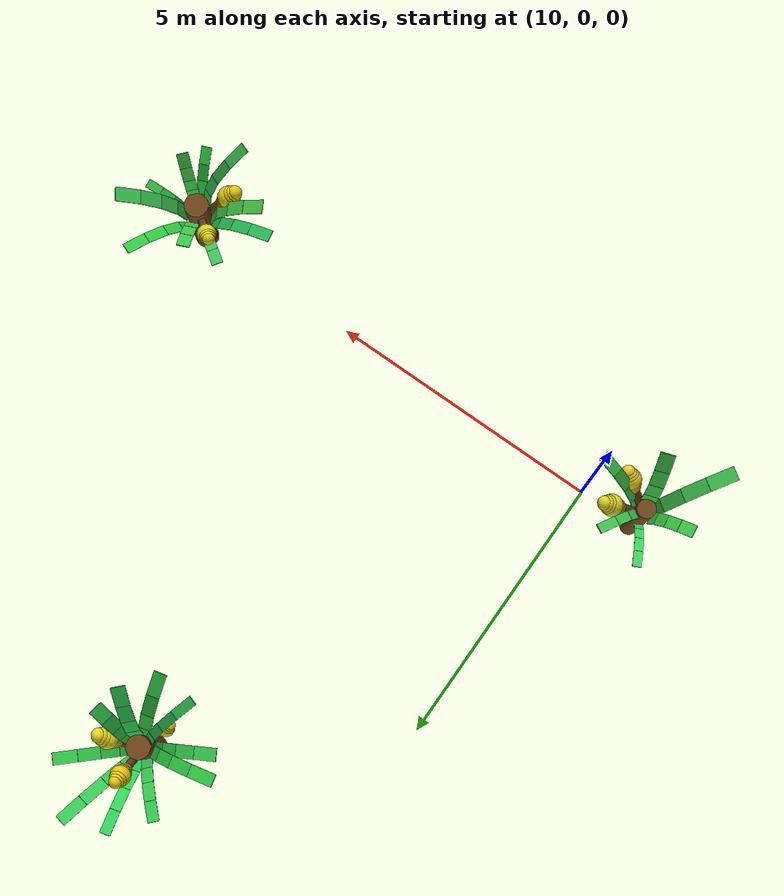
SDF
<sdf version="1.10">
 <world name="tree_world">
  <model name="tree_0_1">
   <pose>9.00 0.00 0 0 0 0</pose>
   <static>true</static>
   <link name="trunk">
    <pose>0 0 1.255 0 0 0</pose>
    <visual name="trunk_vis">
     <geometry><cylinder><radius>0.159</radius><length>2.510</length></cylinder></geometry>
     <material><diffuse>0.45 0.27 0.1 1</diffuse><ambient>0.45 0.27 0.1 1</ambient></material>
    </visual>
   </link>
   <link name="frond_0_1_0">
    <pose>0.153 -0.027 2.008 0 0.252802 -0.178033</pose>
    <visual name="frond_seg_0_1_0_0">
     <pose>0.000 0 0.200 0 0.000000 0</pose>
     <geometry><box><size>0.020 0.188 0.399</size></box></geometry>
     <material><diffuse>0.21 0.80 0.28 1</diffuse><ambient>0.21 0.80 0.28 1</ambient></material>
    </visual>
    <visual name="frond_seg_0_1_0_1">
     <pose>0.052 0 0.592 0 0.261799 0</pose>
     <geometry><box><size>0.020 0.188 0.399</size></box></geometry>
     <material><diffuse>0.21 0.80 0.28 1</diffuse><ambient>0.21 0.80 0.28 1</ambient></material>
    </visual>
    <visual name="frond_seg_0_1_0_2">
     <pose>0.203 0 0.957 0 0.523599 0</pose>
     <geometry><box><size>0.020 0.188 0.399</size></box></geometry>
     <material><diffuse>0.21 0.80 0.28 1</diffuse><ambient>0.21 0.80 0.28 1</ambient></material>
    </visual>
    <visual name="frond_seg_0_1_0_3">
     <pose>0.444 0 1.271 0 0.785398 0</pose>
     <geometry><box><size>0.020 0.188 0.399</size></box></geometry>
     <material><diffuse>0.21 0.80 0.28 1</diffuse><ambient>0.21 0.80 0.28 1</ambient></material>
    </visual>
   </link>
   <link name="frond_0_1_1">
    <pose>0.074 0.136 2.294 0 0.160221 1.075067</pose>
    <visual name="frond_seg_0_1_1_0">
     <pose>0.000 0 0.210 0 0.000000 0</pose>
     <geometry><box><size>0.020 0.161 0.420</size></box></geometry>
     <material><diffuse>0.24 0.83 0.33 1</diffuse><ambient>0.24 0.83 0.33 1</ambient></material>
    </visual>
    <visual name="frond_seg_0_1_1_1">
     <pose>0.054 0 0.623 0 0.261799 0</pose>
     <geometry><box><size>0.020 0.161 0.420</size></box></geometry>
     <material><diffuse>0.24 0.83 0.33 1</diffuse><ambient>0.24 0.83 0.33 1</ambient></material>
    </visual>
    <visual name="frond_seg_0_1_1_2">
     <pose>0.214 0 1.008 0 0.523599 0</pose>
     <geometry><box><size>0.020 0.161 0.420</size></box></geometry>
     <material><diffuse>0.24 0.83 0.33 1</diffuse><ambient>0.24 0.83 0.33 1</ambient></material>
    </visual>
    <visual name="frond_seg_0_1_1_3">
     <pose>0.467 0 1.338 0 0.785398 0</pose>
     <geometry><box><size>0.020 0.161 0.420</size></box></geometry>
     <material><diffuse>0.24 0.83 0.33 1</diffuse><ambient>0.24 0.83 0.33 1</ambient></material>
    </visual>
   </link>
   <link name="frond_0_1_2">
    <pose>-0.066 0.140 1.576 0 0.389572 2.010711</pose>
    <visual name="frond_seg_0_1_2_0">
     <pose>0.000 0 0.145 0 0.000000 0</pose>
     <geometry><box><size>0.020 0.150 0.290</size></box></geometry>
     <material><diffuse>0.22 0.82 0.35 1</diffuse><ambient>0.22 0.82 0.35 1</ambient></material>
    </visual>
    <visual name="frond_seg_0_1_2_1">
     <pose>0.037 0 0.429 0 0.261799 0</pose>
     <geometry><box><size>0.020 0.150 0.290</size></box></geometry>
     <material><diffuse>0.22 0.82 0.35 1</diffuse><ambient>0.22 0.82 0.35 1</ambient></material>
    </visual>
    <visual name="frond_seg_0_1_2_2">
     <pose>0.147 0 0.695 0 0.523599 0</pose>
     <geometry><box><size>0.020 0.150 0.290</size></box></geometry>
     <material><diffuse>0.22 0.82 0.35 1</diffuse><ambient>0.22 0.82 0.35 1</ambient></material>
    </visual>
    <visual name="frond_seg_0_1_2_3">
     <pose>0.322 0 0.922 0 0.785398 0</pose>
     <geometry><box><size>0.020 0.150 0.290</size></box></geometry>
     <material><diffuse>0.22 0.82 0.35 1</diffuse><ambient>0.22 0.82 0.35 1</ambient></material>
    </visual>
   </link>
   <link name="frond_0_1_3">
    <pose>-0.154 -0.021 1.816 0 0.313874 3.278756</pose>
    <visual name="frond_seg_0_1_3_0">
     <pose>0.000 0 0.138 0 0.000000 0</pose>
     <geometry><box><size>0.020 0.213 0.277</size></box></geometry>
     <material><diffuse>0.23 0.80 0.27 1</diffuse><ambient>0.23 0.80 0.27 1</ambient></material>
    </visual>
    <visual name="frond_seg_0_1_3_1">
     <pose>0.036 0 0.410 0 0.261799 0</pose>
     <geometry><box><size>0.020 0.213 0.277</size></box></geometry>
     <material><diffuse>0.23 0.80 0.27 1</diffuse><ambient>0.23 0.80 0.27 1</ambient></material>
    </visual>
    <visual name="frond_seg_0_1_3_2">
     <pose>0.141 0 0.664 0 0.523599 0</pose>
     <geometry><box><size>0.020 0.213 0.277</size></box></geometry>
     <material><diffuse>0.23 0.80 0.27 1</diffuse><ambient>0.23 0.80 0.27 1</ambient></material>
    </visual>
    <visual name="frond_seg_0_1_3_3">
     <pose>0.308 0 0.881 0 0.785398 0</pose>
     <geometry><box><size>0.020 0.213 0.277</size></box></geometry>
     <material><diffuse>0.23 0.80 0.27 1</diffuse><ambient>0.23 0.80 0.27 1</ambient></material>
    </visual>
   </link>
   <link name="frond_0_1_4">
    <pose>-0.086 -0.129 1.429 0 0.436207 4.122772</pose>
    <visual name="frond_seg_0_1_4_0">
     <pose>0.000 0 0.244 0 0.000000 0</pose>
     <geometry><box><size>0.020 0.242 0.488</size></box></geometry>
     <material><diffuse>0.24 0.81 0.30 1</diffuse><ambient>0.24 0.81 0.30 1</ambient></material>
    </visual>
    <visual name="frond_seg_0_1_4_1">
     <pose>0.063 0 0.724 0 0.261799 0</pose>
     <geometry><box><size>0.020 0.242 0.488</size></box></geometry>
     <material><diffuse>0.24 0.81 0.30 1</diffuse><ambient>0.24 0.81 0.30 1</ambient></material>
    </visual>
    <visual name="frond_seg_0_1_4_2">
     <pose>0.248 0 1.172 0 0.523599 0</pose>
     <geometry><box><size>0.020 0.242 0.488</size></box></geometry>
     <material><diffuse>0.24 0.81 0.30 1</diffuse><ambient>0.24 0.81 0.30 1</ambient></material>
    </visual>
    <visual name="frond_seg_0_1_4_3">
     <pose>0.543 0 1.556 0 0.785398 0</pose>
     <geometry><box><size>0.020 0.242 0.488</size></box></geometry>
     <material><diffuse>0.24 0.81 0.30 1</diffuse><ambient>0.24 0.81 0.30 1</ambient></material>
    </visual>
   </link>
   <link name="frond_0_1_5">
    <pose>0.049 -0.147 2.420 0 0.100604 5.032762</pose>
    <visual name="frond_seg_0_1_5_0">
     <pose>0.000 0 0.170 0 0.000000 0</pose>
     <geometry><box><size>0.020 0.249 0.341</size></box></geometry>
     <material><diffuse>0.23 0.77 0.27 1</diffuse><ambient>0.23 0.77 0.27 1</ambient></material>
    </visual>
    <visual name="frond_seg_0_1_5_1">
     <pose>0.044 0 0.505 0 0.261799 0</pose>
     <geometry><box><size>0.020 0.249 0.341</size></box></geometry>
     <material><diffuse>0.23 0.77 0.27 1</diffuse><ambient>0.23 0.77 0.27 1</ambient></material>
    </visual>
    <visual name="frond_seg_0_1_5_2">
     <pose>0.173 0 0.817 0 0.523599 0</pose>
     <geometry><box><size>0.020 0.249 0.341</size></box></geometry>
     <material><diffuse>0.23 0.77 0.27 1</diffuse><ambient>0.23 0.77 0.27 1</ambient></material>
    </visual>
    <visual name="frond_seg_0_1_5_3">
     <pose>0.379 0 1.085 0 0.785398 0</pose>
     <geometry><box><size>0.020 0.249 0.341</size></box></geometry>
     <material><diffuse>0.23 0.77 0.27 1</diffuse><ambient>0.23 0.77 0.27 1</ambient></material>
    </visual>
   </link>
   <link name="fruit_bunch_0_1_0">
    <pose>0.119 0.064 2.020 0 0.738607 0.494845</pose>
    <visual name="stalk_0_1_0">
     <pose>0 0 0.248 0 0 0</pose>
     <geometry><cylinder><radius>0.074</radius><length>0.497</length></cylinder></geometry>
     <material><diffuse>0.37 0.25 0.11 1</diffuse><ambient>0.37 0.25 0.11 1</ambient></material>
    </visual>
    <visual name="fruit_0_1_0_seg0">
     <pose>0 0 0.450 0 0 0</pose>
     <geometry><sphere><radius>0.121</radius></sphere></geometry>
     <material><diffuse>0.86 0.82 0.14 1</diffuse><ambient>0.86 0.82 0.14 1</ambient></material>
    </visual>
    <visual name="fruit_0_1_0_seg1">
     <pose>0 0 0.513 0 0 0</pose>
     <geometry><sphere><radius>0.143</radius></sphere></geometry>
     <material><diffuse>0.86 0.82 0.14 1</diffuse><ambient>0.86 0.82 0.14 1</ambient></material>
    </visual>
    <visual name="fruit_0_1_0_seg2">
     <pose>0 0 0.575 0 0 0</pose>
     <geometry><sphere><radius>0.164</radius></sphere></geometry>
     <material><diffuse>0.86 0.82 0.14 1</diffuse><ambient>0.86 0.82 0.14 1</ambient></material>
    </visual>
    <visual name="fruit_0_1_0_seg3">
     <pose>0 0 0.638 0 0 0</pose>
     <geometry><sphere><radius>0.186</radius></sphere></geometry>
     <material><diffuse>0.86 0.82 0.14 1</diffuse><ambient>0.86 0.82 0.14 1</ambient></material>
    </visual>
    <visual name="fruit_0_1_0_seg4">
     <pose>0 0 0.700 0 0 0</pose>
     <geometry><sphere><radius>0.164</radius></sphere></geometry>
     <material><diffuse>0.86 0.82 0.14 1</diffuse><ambient>0.86 0.82 0.14 1</ambient></material>
    </visual>
    <visual name="fruit_0_1_0_seg5">
     <pose>0 0 0.763 0 0 0</pose>
     <geometry><sphere><radius>0.143</radius></sphere></geometry>
     <material><diffuse>0.86 0.82 0.14 1</diffuse><ambient>0.86 0.82 0.14 1</ambient></material>
    </visual>
    <visual name="fruit_0_1_0_seg6">
     <pose>0 0 0.826 0 0 0</pose>
     <geometry><sphere><radius>0.121</radius></sphere></geometry>
     <material><diffuse>0.86 0.82 0.14 1</diffuse><ambient>0.86 0.82 0.14 1</ambient></material>
    </visual>
   </link>
   <link name="fruit_bunch_0_1_1">
    <pose>0.122 -0.059 2.219 0 0.742684 5.836536</pose>
    <visual name="stalk_0_1_1">
     <pose>0 0 0.228 0 0 0</pose>
     <geometry><cylinder><radius>0.071</radius><length>0.457</length></cylinder></geometry>
     <material><diffuse>0.40 0.22 0.06 1</diffuse><ambient>0.40 0.22 0.06 1</ambient></material>
    </visual>
    <visual name="fruit_0_1_1_seg0">
     <pose>0 0 0.413 0 0 0</pose>
     <geometry><sphere><radius>0.115</radius></sphere></geometry>
     <material><diffuse>0.92 0.79 0.14 1</diffuse><ambient>0.92 0.79 0.14 1</ambient></material>
    </visual>
    <visual name="fruit_0_1_1_seg1">
     <pose>0 0 0.470 0 0 0</pose>
     <geometry><sphere><radius>0.136</radius></sphere></geometry>
     <material><diffuse>0.92 0.79 0.14 1</diffuse><ambient>0.92 0.79 0.14 1</ambient></material>
    </visual>
    <visual name="fruit_0_1_1_seg2">
     <pose>0 0 0.528 0 0 0</pose>
     <geometry><sphere><radius>0.156</radius></sphere></geometry>
     <material><diffuse>0.92 0.79 0.14 1</diffuse><ambient>0.92 0.79 0.14 1</ambient></material>
    </visual>
    <visual name="fruit_0_1_1_seg3">
     <pose>0 0 0.585 0 0 0</pose>
     <geometry><sphere><radius>0.177</radius></sphere></geometry>
     <material><diffuse>0.92 0.79 0.14 1</diffuse><ambient>0.92 0.79 0.14 1</ambient></material>
    </visual>
    <visual name="fruit_0_1_1_seg4">
     <pose>0 0 0.642 0 0 0</pose>
     <geometry><sphere><radius>0.156</radius></sphere></geometry>
     <material><diffuse>0.92 0.79 0.14 1</diffuse><ambient>0.92 0.79 0.14 1</ambient></material>
    </visual>
    <visual name="fruit_0_1_1_seg5">
     <pose>0 0 0.700 0 0 0</pose>
     <geometry><sphere><radius>0.136</radius></sphere></geometry>
     <material><diffuse>0.92 0.79 0.14 1</diffuse><ambient>0.92 0.79 0.14 1</ambient></material>
    </visual>
    <visual name="fruit_0_1_1_seg6">
     <pose>0 0 0.757 0 0 0</pose>
     <geometry><sphere><radius>0.115</radius></sphere></geometry>
     <material><diffuse>0.92 0.79 0.14 1</diffuse><ambient>0.92 0.79 0.14 1</ambient></material>
    </visual>
   </link>
  </model>
  <model name="tree_0_2">
   <pose>18.00 0.00 0 0 0 0</pose>
   <static>true</static>
   <link name="trunk">
    <pose>0 0 1.011 0 0 0</pose>
    <visual name="trunk_vis">
     <geometry><cylinder><radius>0.205</radius><length>2.021</length></cylinder></geometry>
     <material><diffuse>0.45 0.27 0.1 1</diffuse><ambient>0.45 0.27 0.1 1</ambient></material>
    </visual>
   </link>
   <link name="frond_0_2_0">
    <pose>0.200 0.022 1.056 0 0.459785 0.108825</pose>
    <visual name="frond_seg_0_2_0_0">
     <pose>0.000 0 0.133 0 0.000000 0</pose>
     <geometry><box><size>0.020 0.153 0.267</size></box></geometry>
     <material><diffuse>0.18 0.80 0.28 1</diffuse><ambient>0.18 0.80 0.28 1</ambient></material>
    </visual>
    <visual name="frond_seg_0_2_0_1">
     <pose>0.035 0 0.396 0 0.261799 0</pose>
     <geometry><box><size>0.020 0.153 0.267</size></box></geometry>
     <material><diffuse>0.18 0.80 0.28 1</diffuse><ambient>0.18 0.80 0.28 1</ambient></material>
    </visual>
    <visual name="frond_seg_0_2_0_2">
     <pose>0.136 0 0.640 0 0.523599 0</pose>
     <geometry><box><size>0.020 0.153 0.267</size></box></geometry>
     <material><diffuse>0.18 0.80 0.28 1</diffuse><ambient>0.18 0.80 0.28 1</ambient></material>
    </visual>
    <visual name="frond_seg_0_2_0_3">
     <pose>0.297 0 0.850 0 0.785398 0</pose>
     <geometry><box><size>0.020 0.153 0.267</size></box></geometry>
     <material><diffuse>0.18 0.80 0.28 1</diffuse><ambient>0.18 0.80 0.28 1</ambient></material>
    </visual>
   </link>
   <link name="frond_0_2_1">
    <pose>0.164 0.117 1.488 0 0.290012 0.620682</pose>
    <visual name="frond_seg_0_2_1_0">
     <pose>0.000 0 0.215 0 0.000000 0</pose>
     <geometry><box><size>0.020 0.238 0.431</size></box></geometry>
     <material><diffuse>0.21 0.77 0.30 1</diffuse><ambient>0.21 0.77 0.30 1</ambient></material>
    </visual>
    <visual name="frond_seg_0_2_1_1">
     <pose>0.056 0 0.639 0 0.261799 0</pose>
     <geometry><box><size>0.020 0.238 0.431</size></box></geometry>
     <material><diffuse>0.21 0.77 0.30 1</diffuse><ambient>0.21 0.77 0.30 1</ambient></material>
    </visual>
    <visual name="frond_seg_0_2_1_2">
     <pose>0.219 0 1.034 0 0.523599 0</pose>
     <geometry><box><size>0.020 0.238 0.431</size></box></geometry>
     <material><diffuse>0.21 0.77 0.30 1</diffuse><ambient>0.21 0.77 0.30 1</ambient></material>
    </visual>
    <visual name="frond_seg_0_2_1_3">
     <pose>0.479 0 1.372 0 0.785398 0</pose>
     <geometry><box><size>0.020 0.238 0.431</size></box></geometry>
     <material><diffuse>0.21 0.77 0.30 1</diffuse><ambient>0.21 0.77 0.30 1</ambient></material>
    </visual>
   </link>
   <link name="frond_0_2_2">
    <pose>0.071 0.188 1.088 0 0.447256 1.207974</pose>
    <visual name="frond_seg_0_2_2_0">
     <pose>0.000 0 0.207 0 0.000000 0</pose>
     <geometry><box><size>0.020 0.185 0.415</size></box></geometry>
     <material><diffuse>0.19 0.84 0.26 1</diffuse><ambient>0.19 0.84 0.26 1</ambient></material>
    </visual>
    <visual name="frond_seg_0_2_2_1">
     <pose>0.054 0 0.615 0 0.261799 0</pose>
     <geometry><box><size>0.020 0.185 0.415</size></box></geometry>
     <material><diffuse>0.19 0.84 0.26 1</diffuse><ambient>0.19 0.84 0.26 1</ambient></material>
    </visual>
    <visual name="frond_seg_0_2_2_2">
     <pose>0.211 0 0.995 0 0.523599 0</pose>
     <geometry><box><size>0.020 0.185 0.415</size></box></geometry>
     <material><diffuse>0.19 0.84 0.26 1</diffuse><ambient>0.19 0.84 0.26 1</ambient></material>
    </visual>
    <visual name="frond_seg_0_2_2_3">
     <pose>0.461 0 1.321 0 0.785398 0</pose>
     <geometry><box><size>0.020 0.185 0.415</size></box></geometry>
     <material><diffuse>0.19 0.84 0.26 1</diffuse><ambient>0.19 0.84 0.26 1</ambient></material>
    </visual>
   </link>
   <link name="frond_0_2_3">
    <pose>-0.077 0.186 1.583 0 0.252214 1.965305</pose>
    <visual name="frond_seg_0_2_3_0">
     <pose>0.000 0 0.133 0 0.000000 0</pose>
     <geometry><box><size>0.020 0.223 0.265</size></box></geometry>
     <material><diffuse>0.23 0.76 0.27 1</diffuse><ambient>0.23 0.76 0.27 1</ambient></material>
    </visual>
    <visual name="frond_seg_0_2_3_1">
     <pose>0.034 0 0.393 0 0.261799 0</pose>
     <geometry><box><size>0.020 0.223 0.265</size></box></geometry>
     <material><diffuse>0.23 0.76 0.27 1</diffuse><ambient>0.23 0.76 0.27 1</ambient></material>
    </visual>
    <visual name="frond_seg_0_2_3_2">
     <pose>0.135 0 0.636 0 0.523599 0</pose>
     <geometry><box><size>0.020 0.223 0.265</size></box></geometry>
     <material><diffuse>0.23 0.76 0.27 1</diffuse><ambient>0.23 0.76 0.27 1</ambient></material>
    </visual>
    <visual name="frond_seg_0_2_3_3">
     <pose>0.295 0 0.845 0 0.785398 0</pose>
     <geometry><box><size>0.020 0.223 0.265</size></box></geometry>
     <material><diffuse>0.23 0.76 0.27 1</diffuse><ambient>0.23 0.76 0.27 1</ambient></material>
    </visual>
   </link>
   <link name="frond_0_2_4">
    <pose>-0.165 0.115 1.129 0 0.431049 2.532273</pose>
    <visual name="frond_seg_0_2_4_0">
     <pose>0.000 0 0.148 0 0.000000 0</pose>
     <geometry><box><size>0.020 0.196 0.296</size></box></geometry>
     <material><diffuse>0.24 0.76 0.33 1</diffuse><ambient>0.24 0.76 0.33 1</ambient></material>
    </visual>
    <visual name="frond_seg_0_2_4_1">
     <pose>0.038 0 0.439 0 0.261799 0</pose>
     <geometry><box><size>0.020 0.196 0.296</size></box></geometry>
     <material><diffuse>0.24 0.76 0.33 1</diffuse><ambient>0.24 0.76 0.33 1</ambient></material>
    </visual>
    <visual name="frond_seg_0_2_4_2">
     <pose>0.151 0 0.710 0 0.523599 0</pose>
     <geometry><box><size>0.020 0.196 0.296</size></box></geometry>
     <material><diffuse>0.24 0.76 0.33 1</diffuse><ambient>0.24 0.76 0.33 1</ambient></material>
    </visual>
    <visual name="frond_seg_0_2_4_3">
     <pose>0.329 0 0.943 0 0.785398 0</pose>
     <geometry><box><size>0.020 0.196 0.296</size></box></geometry>
     <material><diffuse>0.24 0.76 0.33 1</diffuse><ambient>0.24 0.76 0.33 1</ambient></material>
    </visual>
   </link>
   <link name="frond_0_2_5">
    <pose>-0.198 -0.037 1.091 0 0.445989 3.327976</pose>
    <visual name="frond_seg_0_2_5_0">
     <pose>0.000 0 0.207 0 0.000000 0</pose>
     <geometry><box><size>0.020 0.204 0.413</size></box></geometry>
     <material><diffuse>0.15 0.76 0.33 1</diffuse><ambient>0.15 0.76 0.33 1</ambient></material>
    </visual>
    <visual name="frond_seg_0_2_5_1">
     <pose>0.053 0 0.613 0 0.261799 0</pose>
     <geometry><box><size>0.020 0.204 0.413</size></box></geometry>
     <material><diffuse>0.15 0.76 0.33 1</diffuse><ambient>0.15 0.76 0.33 1</ambient></material>
    </visual>
    <visual name="frond_seg_0_2_5_2">
     <pose>0.210 0 0.991 0 0.523599 0</pose>
     <geometry><box><size>0.020 0.204 0.413</size></box></geometry>
     <material><diffuse>0.15 0.76 0.33 1</diffuse><ambient>0.15 0.76 0.33 1</ambient></material>
    </visual>
    <visual name="frond_seg_0_2_5_3">
     <pose>0.459 0 1.316 0 0.785398 0</pose>
     <geometry><box><size>0.020 0.204 0.413</size></box></geometry>
     <material><diffuse>0.15 0.76 0.33 1</diffuse><ambient>0.15 0.76 0.33 1</ambient></material>
    </visual>
   </link>
   <link name="frond_0_2_6">
    <pose>-0.178 -0.095 1.369 0 0.336954 3.631880</pose>
    <visual name="frond_seg_0_2_6_0">
     <pose>0.000 0 0.185 0 0.000000 0</pose>
     <geometry><box><size>0.020 0.236 0.370</size></box></geometry>
     <material><diffuse>0.24 0.77 0.25 1</diffuse><ambient>0.24 0.77 0.25 1</ambient></material>
    </visual>
    <visual name="frond_seg_0_2_6_1">
     <pose>0.048 0 0.549 0 0.261799 0</pose>
     <geometry><box><size>0.020 0.236 0.370</size></box></geometry>
     <material><diffuse>0.24 0.77 0.25 1</diffuse><ambient>0.24 0.77 0.25 1</ambient></material>
    </visual>
    <visual name="frond_seg_0_2_6_2">
     <pose>0.188 0 0.888 0 0.523599 0</pose>
     <geometry><box><size>0.020 0.236 0.370</size></box></geometry>
     <material><diffuse>0.24 0.77 0.25 1</diffuse><ambient>0.24 0.77 0.25 1</ambient></material>
    </visual>
    <visual name="frond_seg_0_2_6_3">
     <pose>0.412 0 1.180 0 0.785398 0</pose>
     <geometry><box><size>0.020 0.236 0.370</size></box></geometry>
     <material><diffuse>0.24 0.77 0.25 1</diffuse><ambient>0.24 0.77 0.25 1</ambient></material>
    </visual>
   </link>
   <link name="frond_0_2_7">
    <pose>-0.073 -0.188 1.827 0 0.153135 4.340855</pose>
    <visual name="frond_seg_0_2_7_0">
     <pose>0.000 0 0.223 0 0.000000 0</pose>
     <geometry><box><size>0.020 0.179 0.446</size></box></geometry>
     <material><diffuse>0.22 0.82 0.33 1</diffuse><ambient>0.22 0.82 0.33 1</ambient></material>
    </visual>
    <visual name="frond_seg_0_2_7_1">
     <pose>0.058 0 0.662 0 0.261799 0</pose>
     <geometry><box><size>0.020 0.179 0.446</size></box></geometry>
     <material><diffuse>0.22 0.82 0.33 1</diffuse><ambient>0.22 0.82 0.33 1</ambient></material>
    </visual>
    <visual name="frond_seg_0_2_7_2">
     <pose>0.227 0 1.071 0 0.523599 0</pose>
     <geometry><box><size>0.020 0.179 0.446</size></box></geometry>
     <material><diffuse>0.22 0.82 0.33 1</diffuse><ambient>0.22 0.82 0.33 1</ambient></material>
    </visual>
    <visual name="frond_seg_0_2_7_3">
     <pose>0.496 0 1.422 0 0.785398 0</pose>
     <geometry><box><size>0.020 0.179 0.446</size></box></geometry>
     <material><diffuse>0.22 0.82 0.33 1</diffuse><ambient>0.22 0.82 0.33 1</ambient></material>
    </visual>
   </link>
   <link name="frond_0_2_8">
    <pose>0.078 -0.186 1.441 0 0.308589 5.111304</pose>
    <visual name="frond_seg_0_2_8_0">
     <pose>0.000 0 0.149 0 0.000000 0</pose>
     <geometry><box><size>0.020 0.172 0.297</size></box></geometry>
     <material><diffuse>0.16 0.82 0.26 1</diffuse><ambient>0.16 0.82 0.26 1</ambient></material>
    </visual>
    <visual name="frond_seg_0_2_8_1">
     <pose>0.038 0 0.441 0 0.261799 0</pose>
     <geometry><box><size>0.020 0.172 0.297</size></box></geometry>
     <material><diffuse>0.16 0.82 0.26 1</diffuse><ambient>0.16 0.82 0.26 1</ambient></material>
    </visual>
    <visual name="frond_seg_0_2_8_2">
     <pose>0.151 0 0.714 0 0.523599 0</pose>
     <geometry><box><size>0.020 0.172 0.297</size></box></geometry>
     <material><diffuse>0.16 0.82 0.26 1</diffuse><ambient>0.16 0.82 0.26 1</ambient></material>
    </visual>
    <visual name="frond_seg_0_2_8_3">
     <pose>0.331 0 0.948 0 0.785398 0</pose>
     <geometry><box><size>0.020 0.172 0.297</size></box></geometry>
     <material><diffuse>0.16 0.82 0.26 1</diffuse><ambient>0.16 0.82 0.26 1</ambient></material>
    </visual>
   </link>
   <link name="frond_0_2_9">
    <pose>0.151 -0.134 1.935 0 0.087894 5.557270</pose>
    <visual name="frond_seg_0_2_9_0">
     <pose>0.000 0 0.131 0 0.000000 0</pose>
     <geometry><box><size>0.020 0.198 0.263</size></box></geometry>
     <material><diffuse>0.24 0.80 0.26 1</diffuse><ambient>0.24 0.80 0.26 1</ambient></material>
    </visual>
    <visual name="frond_seg_0_2_9_1">
     <pose>0.034 0 0.389 0 0.261799 0</pose>
     <geometry><box><size>0.020 0.198 0.263</size></box></geometry>
     <material><diffuse>0.24 0.80 0.26 1</diffuse><ambient>0.24 0.80 0.26 1</ambient></material>
    </visual>
    <visual name="frond_seg_0_2_9_2">
     <pose>0.134 0 0.630 0 0.523599 0</pose>
     <geometry><box><size>0.020 0.198 0.263</size></box></geometry>
     <material><diffuse>0.24 0.80 0.26 1</diffuse><ambient>0.24 0.80 0.26 1</ambient></material>
    </visual>
    <visual name="frond_seg_0_2_9_3">
     <pose>0.292 0 0.836 0 0.785398 0</pose>
     <geometry><box><size>0.020 0.198 0.263</size></box></geometry>
     <material><diffuse>0.24 0.80 0.26 1</diffuse><ambient>0.24 0.80 0.26 1</ambient></material>
    </visual>
   </link>
   <link name="fruit_bunch_0_2_0">
    <pose>-0.145 0.100 1.734 0 0.775205 2.536997</pose>
    <visual name="stalk_0_2_0">
     <pose>0 0 0.218 0 0 0</pose>
     <geometry><cylinder><radius>0.067</radius><length>0.437</length></cylinder></geometry>
     <material><diffuse>0.38 0.23 0.12 1</diffuse><ambient>0.38 0.23 0.12 1</ambient></material>
    </visual>
    <visual name="fruit_0_2_0_seg0">
     <pose>0 0 0.395 0 0 0</pose>
     <geometry><sphere><radius>0.109</radius></sphere></geometry>
     <material><diffuse>0.86 0.82 0.11 1</diffuse><ambient>0.86 0.82 0.11 1</ambient></material>
    </visual>
    <visual name="fruit_0_2_0_seg1">
     <pose>0 0 0.444 0 0 0</pose>
     <geometry><sphere><radius>0.129</radius></sphere></geometry>
     <material><diffuse>0.86 0.82 0.11 1</diffuse><ambient>0.86 0.82 0.11 1</ambient></material>
    </visual>
    <visual name="fruit_0_2_0_seg2">
     <pose>0 0 0.494 0 0 0</pose>
     <geometry><sphere><radius>0.148</radius></sphere></geometry>
     <material><diffuse>0.86 0.82 0.11 1</diffuse><ambient>0.86 0.82 0.11 1</ambient></material>
    </visual>
    <visual name="fruit_0_2_0_seg3">
     <pose>0 0 0.543 0 0 0</pose>
     <geometry><sphere><radius>0.168</radius></sphere></geometry>
     <material><diffuse>0.86 0.82 0.11 1</diffuse><ambient>0.86 0.82 0.11 1</ambient></material>
    </visual>
    <visual name="fruit_0_2_0_seg4">
     <pose>0 0 0.593 0 0 0</pose>
     <geometry><sphere><radius>0.148</radius></sphere></geometry>
     <material><diffuse>0.86 0.82 0.11 1</diffuse><ambient>0.86 0.82 0.11 1</ambient></material>
    </visual>
    <visual name="fruit_0_2_0_seg5">
     <pose>0 0 0.642 0 0 0</pose>
     <geometry><sphere><radius>0.129</radius></sphere></geometry>
     <material><diffuse>0.86 0.82 0.11 1</diffuse><ambient>0.86 0.82 0.11 1</ambient></material>
    </visual>
    <visual name="fruit_0_2_0_seg6">
     <pose>0 0 0.692 0 0 0</pose>
     <geometry><sphere><radius>0.109</radius></sphere></geometry>
     <material><diffuse>0.86 0.82 0.11 1</diffuse><ambient>0.86 0.82 0.11 1</ambient></material>
    </visual>
   </link>
   <link name="fruit_bunch_0_2_1">
    <pose>-0.106 -0.138 1.441 0 0.690666 4.055801</pose>
    <visual name="stalk_0_2_1">
     <pose>0 0 0.245 0 0 0</pose>
     <geometry><cylinder><radius>0.078</radius><length>0.490</length></cylinder></geometry>
     <material><diffuse>0.40 0.25 0.06 1</diffuse><ambient>0.40 0.25 0.06 1</ambient></material>
    </visual>
    <visual name="fruit_0_2_1_seg0">
     <pose>0 0 0.442 0 0 0</pose>
     <geometry><sphere><radius>0.127</radius></sphere></geometry>
     <material><diffuse>0.91 0.81 0.06 1</diffuse><ambient>0.91 0.81 0.06 1</ambient></material>
    </visual>
    <visual name="fruit_0_2_1_seg1">
     <pose>0 0 0.499 0 0 0</pose>
     <geometry><sphere><radius>0.149</radius></sphere></geometry>
     <material><diffuse>0.91 0.81 0.06 1</diffuse><ambient>0.91 0.81 0.06 1</ambient></material>
    </visual>
    <visual name="fruit_0_2_1_seg2">
     <pose>0 0 0.556 0 0 0</pose>
     <geometry><sphere><radius>0.172</radius></sphere></geometry>
     <material><diffuse>0.91 0.81 0.06 1</diffuse><ambient>0.91 0.81 0.06 1</ambient></material>
    </visual>
    <visual name="fruit_0_2_1_seg3">
     <pose>0 0 0.612 0 0 0</pose>
     <geometry><sphere><radius>0.195</radius></sphere></geometry>
     <material><diffuse>0.91 0.81 0.06 1</diffuse><ambient>0.91 0.81 0.06 1</ambient></material>
    </visual>
    <visual name="fruit_0_2_1_seg4">
     <pose>0 0 0.669 0 0 0</pose>
     <geometry><sphere><radius>0.172</radius></sphere></geometry>
     <material><diffuse>0.91 0.81 0.06 1</diffuse><ambient>0.91 0.81 0.06 1</ambient></material>
    </visual>
    <visual name="fruit_0_2_1_seg5">
     <pose>0 0 0.726 0 0 0</pose>
     <geometry><sphere><radius>0.149</radius></sphere></geometry>
     <material><diffuse>0.91 0.81 0.06 1</diffuse><ambient>0.91 0.81 0.06 1</ambient></material>
    </visual>
    <visual name="fruit_0_2_1_seg6">
     <pose>0 0 0.783 0 0 0</pose>
     <geometry><sphere><radius>0.127</radius></sphere></geometry>
     <material><diffuse>0.91 0.81 0.06 1</diffuse><ambient>0.91 0.81 0.06 1</ambient></material>
    </visual>
   </link>
  </model>
  <model name="tree_1_1">
   <pose>13.50 7.79 0 0 0 0</pose>
   <static>true</static>
   <link name="trunk">
    <pose>0 0 1.176 0 0 0</pose>
    <visual name="trunk_vis">
     <geometry><cylinder><radius>0.201</radius><length>2.351</length></cylinder></geometry>
     <material><diffuse>0.45 0.27 0.1 1</diffuse><ambient>0.45 0.27 0.1 1</ambient></material>
    </visual>
   </link>
   <link name="frond_1_1_0">
    <pose>0.193 -0.039 2.184 0 0.218962 -0.201407</pose>
    <visual name="frond_seg_1_1_0_0">
     <pose>0.000 0 0.147 0 0.000000 0</pose>
     <geometry><box><size>0.020 0.246 0.295</size></box></geometry>
     <material><diffuse>0.18 0.76 0.29 1</diffuse><ambient>0.18 0.76 0.29 1</ambient></material>
    </visual>
    <visual name="frond_seg_1_1_0_1">
     <pose>0.038 0 0.437 0 0.261799 0</pose>
     <geometry><box><size>0.020 0.246 0.295</size></box></geometry>
     <material><diffuse>0.18 0.76 0.29 1</diffuse><ambient>0.18 0.76 0.29 1</ambient></material>
    </visual>
    <visual name="frond_seg_1_1_0_2">
     <pose>0.150 0 0.707 0 0.523599 0</pose>
     <geometry><box><size>0.020 0.246 0.295</size></box></geometry>
     <material><diffuse>0.18 0.76 0.29 1</diffuse><ambient>0.18 0.76 0.29 1</ambient></material>
    </visual>
    <visual name="frond_seg_1_1_0_3">
     <pose>0.328 0 0.939 0 0.785398 0</pose>
     <geometry><box><size>0.020 0.246 0.295</size></box></geometry>
     <material><diffuse>0.18 0.76 0.29 1</diffuse><ambient>0.18 0.76 0.29 1</ambient></material>
    </visual>
   </link>
   <link name="frond_1_1_1">
    <pose>0.144 0.134 1.499 0 0.451067 0.747984</pose>
    <visual name="frond_seg_1_1_1_0">
     <pose>0.000 0 0.201 0 0.000000 0</pose>
     <geometry><box><size>0.020 0.201 0.402</size></box></geometry>
     <material><diffuse>0.19 0.81 0.28 1</diffuse><ambient>0.19 0.81 0.28 1</ambient></material>
    </visual>
    <visual name="frond_seg_1_1_1_1">
     <pose>0.052 0 0.595 0 0.261799 0</pose>
     <geometry><box><size>0.020 0.201 0.402</size></box></geometry>
     <material><diffuse>0.19 0.81 0.28 1</diffuse><ambient>0.19 0.81 0.28 1</ambient></material>
    </visual>
    <visual name="frond_seg_1_1_1_2">
     <pose>0.204 0 0.963 0 0.523599 0</pose>
     <geometry><box><size>0.020 0.201 0.402</size></box></geometry>
     <material><diffuse>0.19 0.81 0.28 1</diffuse><ambient>0.19 0.81 0.28 1</ambient></material>
    </visual>
    <visual name="frond_seg_1_1_1_3">
     <pose>0.447 0 1.279 0 0.785398 0</pose>
     <geometry><box><size>0.020 0.201 0.402</size></box></geometry>
     <material><diffuse>0.19 0.81 0.28 1</diffuse><ambient>0.19 0.81 0.28 1</ambient></material>
    </visual>
   </link>
   <link name="frond_1_1_2">
    <pose>0.040 0.193 1.171 0 0.561332 1.365957</pose>
    <visual name="frond_seg_1_1_2_0">
     <pose>0.000 0 0.241 0 0.000000 0</pose>
     <geometry><box><size>0.020 0.204 0.481</size></box></geometry>
     <material><diffuse>0.22 0.82 0.32 1</diffuse><ambient>0.22 0.82 0.32 1</ambient></material>
    </visual>
    <visual name="frond_seg_1_1_2_1">
     <pose>0.062 0 0.714 0 0.261799 0</pose>
     <geometry><box><size>0.020 0.204 0.481</size></box></geometry>
     <material><diffuse>0.22 0.82 0.32 1</diffuse><ambient>0.22 0.82 0.32 1</ambient></material>
    </visual>
    <visual name="frond_seg_1_1_2_2">
     <pose>0.245 0 1.155 0 0.523599 0</pose>
     <geometry><box><size>0.020 0.204 0.481</size></box></geometry>
     <material><diffuse>0.22 0.82 0.32 1</diffuse><ambient>0.22 0.82 0.32 1</ambient></material>
    </visual>
    <visual name="frond_seg_1_1_2_3">
     <pose>0.535 0 1.533 0 0.785398 0</pose>
     <geometry><box><size>0.020 0.204 0.481</size></box></geometry>
     <material><diffuse>0.22 0.82 0.32 1</diffuse><ambient>0.22 0.82 0.32 1</ambient></material>
    </visual>
   </link>
   <link name="frond_1_1_3">
    <pose>-0.047 0.191 1.243 0 0.537199 1.813862</pose>
    <visual name="frond_seg_1_1_3_0">
     <pose>0.000 0 0.208 0 0.000000 0</pose>
     <geometry><box><size>0.020 0.183 0.416</size></box></geometry>
     <material><diffuse>0.18 0.83 0.32 1</diffuse><ambient>0.18 0.83 0.32 1</ambient></material>
    </visual>
    <visual name="frond_seg_1_1_3_1">
     <pose>0.054 0 0.617 0 0.261799 0</pose>
     <geometry><box><size>0.020 0.183 0.416</size></box></geometry>
     <material><diffuse>0.18 0.83 0.32 1</diffuse><ambient>0.18 0.83 0.32 1</ambient></material>
    </visual>
    <visual name="frond_seg_1_1_3_2">
     <pose>0.212 0 0.998 0 0.523599 0</pose>
     <geometry><box><size>0.020 0.183 0.416</size></box></geometry>
     <material><diffuse>0.18 0.83 0.32 1</diffuse><ambient>0.18 0.83 0.32 1</ambient></material>
    </visual>
    <visual name="frond_seg_1_1_3_3">
     <pose>0.463 0 1.325 0 0.785398 0</pose>
     <geometry><box><size>0.020 0.183 0.416</size></box></geometry>
     <material><diffuse>0.18 0.83 0.32 1</diffuse><ambient>0.18 0.83 0.32 1</ambient></material>
    </visual>
   </link>
   <link name="frond_1_1_4">
    <pose>-0.146 0.132 1.495 0 0.452619 2.408723</pose>
    <visual name="frond_seg_1_1_4_0">
     <pose>0.000 0 0.176 0 0.000000 0</pose>
     <geometry><box><size>0.020 0.190 0.352</size></box></geometry>
     <material><diffuse>0.18 0.76 0.29 1</diffuse><ambient>0.18 0.76 0.29 1</ambient></material>
    </visual>
    <visual name="frond_seg_1_1_4_1">
     <pose>0.046 0 0.522 0 0.261799 0</pose>
     <geometry><box><size>0.020 0.190 0.352</size></box></geometry>
     <material><diffuse>0.18 0.76 0.29 1</diffuse><ambient>0.18 0.76 0.29 1</ambient></material>
    </visual>
    <visual name="frond_seg_1_1_4_2">
     <pose>0.179 0 0.845 0 0.523599 0</pose>
     <geometry><box><size>0.020 0.190 0.352</size></box></geometry>
     <material><diffuse>0.18 0.76 0.29 1</diffuse><ambient>0.18 0.76 0.29 1</ambient></material>
    </visual>
    <visual name="frond_seg_1_1_4_3">
     <pose>0.392 0 1.122 0 0.785398 0</pose>
     <geometry><box><size>0.020 0.190 0.352</size></box></geometry>
     <material><diffuse>0.18 0.76 0.29 1</diffuse><ambient>0.18 0.76 0.29 1</ambient></material>
    </visual>
   </link>
   <link name="frond_1_1_5">
    <pose>-0.192 -0.045 1.880 0 0.322546 3.372167</pose>
    <visual name="frond_seg_1_1_5_0">
     <pose>0.000 0 0.238 0 0.000000 0</pose>
     <geometry><box><size>0.020 0.212 0.476</size></box></geometry>
     <material><diffuse>0.18 0.80 0.25 1</diffuse><ambient>0.18 0.80 0.25 1</ambient></material>
    </visual>
    <visual name="frond_seg_1_1_5_1">
     <pose>0.062 0 0.705 0 0.261799 0</pose>
     <geometry><box><size>0.020 0.212 0.476</size></box></geometry>
     <material><diffuse>0.18 0.80 0.25 1</diffuse><ambient>0.18 0.80 0.25 1</ambient></material>
    </visual>
    <visual name="frond_seg_1_1_5_2">
     <pose>0.242 0 1.141 0 0.523599 0</pose>
     <geometry><box><size>0.020 0.212 0.476</size></box></geometry>
     <material><diffuse>0.18 0.80 0.25 1</diffuse><ambient>0.18 0.80 0.25 1</ambient></material>
    </visual>
    <visual name="frond_seg_1_1_5_3">
     <pose>0.529 0 1.515 0 0.785398 0</pose>
     <geometry><box><size>0.020 0.212 0.476</size></box></geometry>
     <material><diffuse>0.18 0.80 0.25 1</diffuse><ambient>0.18 0.80 0.25 1</ambient></material>
    </visual>
   </link>
   <link name="frond_1_1_6">
    <pose>-0.171 -0.097 1.621 0 0.409994 3.658339</pose>
    <visual name="frond_seg_1_1_6_0">
     <pose>0.000 0 0.197 0 0.000000 0</pose>
     <geometry><box><size>0.020 0.215 0.395</size></box></geometry>
     <material><diffuse>0.20 0.79 0.27 1</diffuse><ambient>0.20 0.79 0.27 1</ambient></material>
    </visual>
    <visual name="frond_seg_1_1_6_1">
     <pose>0.051 0 0.586 0 0.261799 0</pose>
     <geometry><box><size>0.020 0.215 0.395</size></box></geometry>
     <material><diffuse>0.20 0.79 0.27 1</diffuse><ambient>0.20 0.79 0.27 1</ambient></material>
    </visual>
    <visual name="frond_seg_1_1_6_2">
     <pose>0.201 0 0.948 0 0.523599 0</pose>
     <geometry><box><size>0.020 0.215 0.395</size></box></geometry>
     <material><diffuse>0.20 0.79 0.27 1</diffuse><ambient>0.20 0.79 0.27 1</ambient></material>
    </visual>
    <visual name="frond_seg_1_1_6_3">
     <pose>0.439 0 1.258 0 0.785398 0</pose>
     <geometry><box><size>0.020 0.215 0.395</size></box></geometry>
     <material><diffuse>0.20 0.79 0.27 1</diffuse><ambient>0.20 0.79 0.27 1</ambient></material>
    </visual>
   </link>
   <link name="frond_1_1_7">
    <pose>-0.063 -0.186 2.113 0 0.243426 4.384190</pose>
    <visual name="frond_seg_1_1_7_0">
     <pose>0.000 0 0.225 0 0.000000 0</pose>
     <geometry><box><size>0.020 0.167 0.449</size></box></geometry>
     <material><diffuse>0.16 0.80 0.31 1</diffuse><ambient>0.16 0.80 0.31 1</ambient></material>
    </visual>
    <visual name="frond_seg_1_1_7_1">
     <pose>0.058 0 0.666 0 0.261799 0</pose>
     <geometry><box><size>0.020 0.167 0.449</size></box></geometry>
     <material><diffuse>0.16 0.80 0.31 1</diffuse><ambient>0.16 0.80 0.31 1</ambient></material>
    </visual>
    <visual name="frond_seg_1_1_7_2">
     <pose>0.228 0 1.077 0 0.523599 0</pose>
     <geometry><box><size>0.020 0.167 0.449</size></box></geometry>
     <material><diffuse>0.16 0.80 0.31 1</diffuse><ambient>0.16 0.80 0.31 1</ambient></material>
    </visual>
    <visual name="frond_seg_1_1_7_3">
     <pose>0.499 0 1.430 0 0.785398 0</pose>
     <geometry><box><size>0.020 0.167 0.449</size></box></geometry>
     <material><diffuse>0.16 0.80 0.31 1</diffuse><ambient>0.16 0.80 0.31 1</ambient></material>
    </visual>
   </link>
   <link name="frond_1_1_8">
    <pose>0.044 -0.192 2.027 0 0.272675 4.940253</pose>
    <visual name="frond_seg_1_1_8_0">
     <pose>0.000 0 0.219 0 0.000000 0</pose>
     <geometry><box><size>0.020 0.217 0.438</size></box></geometry>
     <material><diffuse>0.17 0.77 0.25 1</diffuse><ambient>0.17 0.77 0.25 1</ambient></material>
    </visual>
    <visual name="frond_seg_1_1_8_1">
     <pose>0.057 0 0.649 0 0.261799 0</pose>
     <geometry><box><size>0.020 0.217 0.438</size></box></geometry>
     <material><diffuse>0.17 0.77 0.25 1</diffuse><ambient>0.17 0.77 0.25 1</ambient></material>
    </visual>
    <visual name="frond_seg_1_1_8_2">
     <pose>0.223 0 1.050 0 0.523599 0</pose>
     <geometry><box><size>0.020 0.217 0.438</size></box></geometry>
     <material><diffuse>0.17 0.77 0.25 1</diffuse><ambient>0.17 0.77 0.25 1</ambient></material>
    </visual>
    <visual name="frond_seg_1_1_8_3">
     <pose>0.487 0 1.395 0 0.785398 0</pose>
     <geometry><box><size>0.020 0.217 0.438</size></box></geometry>
     <material><diffuse>0.17 0.77 0.25 1</diffuse><ambient>0.17 0.77 0.25 1</ambient></material>
    </visual>
   </link>
   <link name="frond_1_1_9">
    <pose>0.142 -0.136 2.281 0 0.169230 5.521267</pose>
    <visual name="frond_seg_1_1_9_0">
     <pose>0.000 0 0.184 0 0.000000 0</pose>
     <geometry><box><size>0.020 0.235 0.369</size></box></geometry>
     <material><diffuse>0.16 0.79 0.31 1</diffuse><ambient>0.16 0.79 0.31 1</ambient></material>
    </visual>
    <visual name="frond_seg_1_1_9_1">
     <pose>0.048 0 0.547 0 0.261799 0</pose>
     <geometry><box><size>0.020 0.235 0.369</size></box></geometry>
     <material><diffuse>0.16 0.79 0.31 1</diffuse><ambient>0.16 0.79 0.31 1</ambient></material>
    </visual>
    <visual name="frond_seg_1_1_9_2">
     <pose>0.188 0 0.885 0 0.523599 0</pose>
     <geometry><box><size>0.020 0.235 0.369</size></box></geometry>
     <material><diffuse>0.16 0.79 0.31 1</diffuse><ambient>0.16 0.79 0.31 1</ambient></material>
    </visual>
    <visual name="frond_seg_1_1_9_3">
     <pose>0.410 0 1.175 0 0.785398 0</pose>
     <geometry><box><size>0.020 0.235 0.369</size></box></geometry>
     <material><diffuse>0.16 0.79 0.31 1</diffuse><ambient>0.16 0.79 0.31 1</ambient></material>
    </visual>
   </link>
   <link name="fruit_bunch_1_1_0">
    <pose>-0.056 -0.161 1.711 0 0.697150 4.375323</pose>
    <visual name="stalk_1_1_0">
     <pose>0 0 0.224 0 0 0</pose>
     <geometry><cylinder><radius>0.057</radius><length>0.448</length></cylinder></geometry>
     <material><diffuse>0.39 0.22 0.15 1</diffuse><ambient>0.39 0.22 0.15 1</ambient></material>
    </visual>
    <visual name="fruit_1_1_0_seg0">
     <pose>0 0 0.413 0 0 0</pose>
     <geometry><sphere><radius>0.093</radius></sphere></geometry>
     <material><diffuse>0.93 0.83 0.06 1</diffuse><ambient>0.93 0.83 0.06 1</ambient></material>
    </visual>
    <visual name="fruit_1_1_0_seg1">
     <pose>0 0 0.454 0 0 0</pose>
     <geometry><sphere><radius>0.110</radius></sphere></geometry>
     <material><diffuse>0.93 0.83 0.06 1</diffuse><ambient>0.93 0.83 0.06 1</ambient></material>
    </visual>
    <visual name="fruit_1_1_0_seg2">
     <pose>0 0 0.496 0 0 0</pose>
     <geometry><sphere><radius>0.127</radius></sphere></geometry>
     <material><diffuse>0.93 0.83 0.06 1</diffuse><ambient>0.93 0.83 0.06 1</ambient></material>
    </visual>
    <visual name="fruit_1_1_0_seg3">
     <pose>0 0 0.538 0 0 0</pose>
     <geometry><sphere><radius>0.143</radius></sphere></geometry>
     <material><diffuse>0.93 0.83 0.06 1</diffuse><ambient>0.93 0.83 0.06 1</ambient></material>
    </visual>
    <visual name="fruit_1_1_0_seg4">
     <pose>0 0 0.580 0 0 0</pose>
     <geometry><sphere><radius>0.127</radius></sphere></geometry>
     <material><diffuse>0.93 0.83 0.06 1</diffuse><ambient>0.93 0.83 0.06 1</ambient></material>
    </visual>
    <visual name="fruit_1_1_0_seg5">
     <pose>0 0 0.622 0 0 0</pose>
     <geometry><sphere><radius>0.110</radius></sphere></geometry>
     <material><diffuse>0.93 0.83 0.06 1</diffuse><ambient>0.93 0.83 0.06 1</ambient></material>
    </visual>
    <visual name="fruit_1_1_0_seg6">
     <pose>0 0 0.664 0 0 0</pose>
     <geometry><sphere><radius>0.093</radius></sphere></geometry>
     <material><diffuse>0.93 0.83 0.06 1</diffuse><ambient>0.93 0.83 0.06 1</ambient></material>
    </visual>
   </link>
   <link name="fruit_bunch_1_1_1">
    <pose>0.161 0.052 1.865 0 0.654359 0.315531</pose>
    <visual name="stalk_1_1_1">
     <pose>0 0 0.209 0 0 0</pose>
     <geometry><cylinder><radius>0.075</radius><length>0.418</length></cylinder></geometry>
     <material><diffuse>0.45 0.29 0.11 1</diffuse><ambient>0.45 0.29 0.11 1</ambient></material>
    </visual>
    <visual name="fruit_1_1_1_seg0">
     <pose>0 0 0.371 0 0 0</pose>
     <geometry><sphere><radius>0.123</radius></sphere></geometry>
     <material><diffuse>0.92 0.85 0.11 1</diffuse><ambient>0.92 0.85 0.11 1</ambient></material>
    </visual>
    <visual name="fruit_1_1_1_seg1">
     <pose>0 0 0.439 0 0 0</pose>
     <geometry><sphere><radius>0.145</radius></sphere></geometry>
     <material><diffuse>0.92 0.85 0.11 1</diffuse><ambient>0.92 0.85 0.11 1</ambient></material>
    </visual>
    <visual name="fruit_1_1_1_seg2">
     <pose>0 0 0.507 0 0 0</pose>
     <geometry><sphere><radius>0.167</radius></sphere></geometry>
     <material><diffuse>0.92 0.85 0.11 1</diffuse><ambient>0.92 0.85 0.11 1</ambient></material>
    </visual>
    <visual name="fruit_1_1_1_seg3">
     <pose>0 0 0.574 0 0 0</pose>
     <geometry><sphere><radius>0.189</radius></sphere></geometry>
     <material><diffuse>0.92 0.85 0.11 1</diffuse><ambient>0.92 0.85 0.11 1</ambient></material>
    </visual>
    <visual name="fruit_1_1_1_seg4">
     <pose>0 0 0.642 0 0 0</pose>
     <geometry><sphere><radius>0.167</radius></sphere></geometry>
     <material><diffuse>0.92 0.85 0.11 1</diffuse><ambient>0.92 0.85 0.11 1</ambient></material>
    </visual>
    <visual name="fruit_1_1_1_seg5">
     <pose>0 0 0.709 0 0 0</pose>
     <geometry><sphere><radius>0.145</radius></sphere></geometry>
     <material><diffuse>0.92 0.85 0.11 1</diffuse><ambient>0.92 0.85 0.11 1</ambient></material>
    </visual>
    <visual name="fruit_1_1_1_seg6">
     <pose>0 0 0.777 0 0 0</pose>
     <geometry><sphere><radius>0.123</radius></sphere></geometry>
     <material><diffuse>0.92 0.85 0.11 1</diffuse><ambient>0.92 0.85 0.11 1</ambient></material>
    </visual>
   </link>
   <link name="fruit_bunch_1_1_2">
    <pose>-0.010 0.169 1.845 0 0.654017 1.628549</pose>
    <visual name="stalk_1_1_2">
     <pose>0 0 0.232 0 0 0</pose>
     <geometry><cylinder><radius>0.069</radius><length>0.465</length></cylinder></geometry>
     <material><diffuse>0.38 0.23 0.08 1</diffuse><ambient>0.38 0.23 0.08 1</ambient></material>
    </visual>
    <visual name="fruit_1_1_2_seg0">
     <pose>0 0 0.422 0 0 0</pose>
     <geometry><sphere><radius>0.112</radius></sphere></geometry>
     <material><diffuse>0.91 0.78 0.06 1</diffuse><ambient>0.91 0.78 0.06 1</ambient></material>
    </visual>
    <visual name="fruit_1_1_2_seg1">
     <pose>0 0 0.480 0 0 0</pose>
     <geometry><sphere><radius>0.132</radius></sphere></geometry>
     <material><diffuse>0.91 0.78 0.06 1</diffuse><ambient>0.91 0.78 0.06 1</ambient></material>
    </visual>
    <visual name="fruit_1_1_2_seg2">
     <pose>0 0 0.537 0 0 0</pose>
     <geometry><sphere><radius>0.153</radius></sphere></geometry>
     <material><diffuse>0.91 0.78 0.06 1</diffuse><ambient>0.91 0.78 0.06 1</ambient></material>
    </visual>
    <visual name="fruit_1_1_2_seg3">
     <pose>0 0 0.595 0 0 0</pose>
     <geometry><sphere><radius>0.173</radius></sphere></geometry>
     <material><diffuse>0.91 0.78 0.06 1</diffuse><ambient>0.91 0.78 0.06 1</ambient></material>
    </visual>
    <visual name="fruit_1_1_2_seg4">
     <pose>0 0 0.653 0 0 0</pose>
     <geometry><sphere><radius>0.153</radius></sphere></geometry>
     <material><diffuse>0.91 0.78 0.06 1</diffuse><ambient>0.91 0.78 0.06 1</ambient></material>
    </visual>
    <visual name="fruit_1_1_2_seg5">
     <pose>0 0 0.711 0 0 0</pose>
     <geometry><sphere><radius>0.132</radius></sphere></geometry>
     <material><diffuse>0.91 0.78 0.06 1</diffuse><ambient>0.91 0.78 0.06 1</ambient></material>
    </visual>
    <visual name="fruit_1_1_2_seg6">
     <pose>0 0 0.769 0 0 0</pose>
     <geometry><sphere><radius>0.112</radius></sphere></geometry>
     <material><diffuse>0.91 0.78 0.06 1</diffuse><ambient>0.91 0.78 0.06 1</ambient></material>
    </visual>
   </link>
  </model>
 </world>
</sdf>
